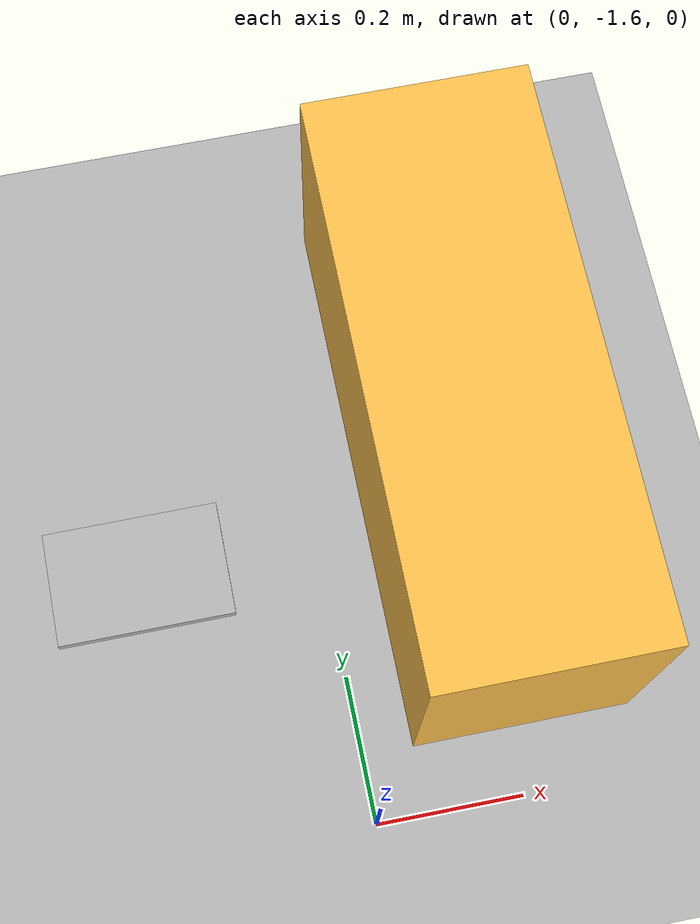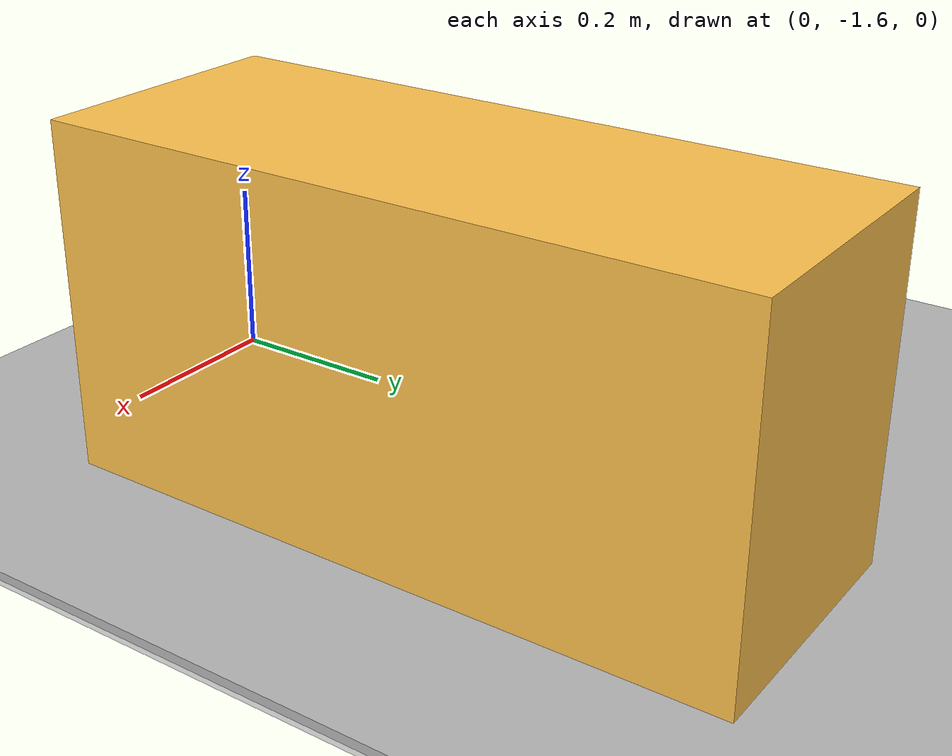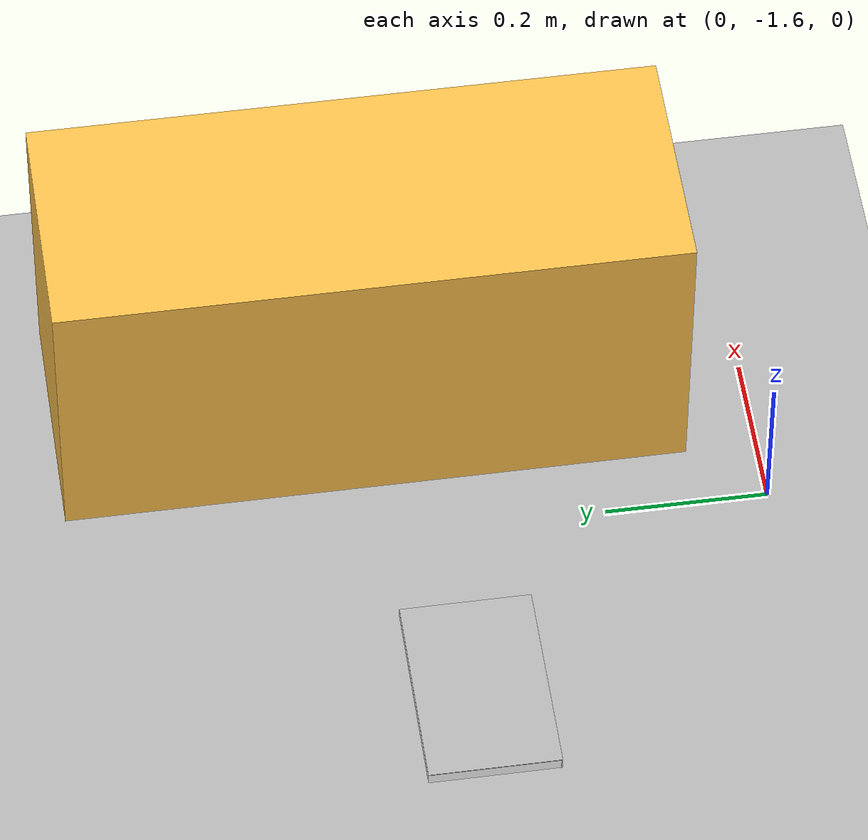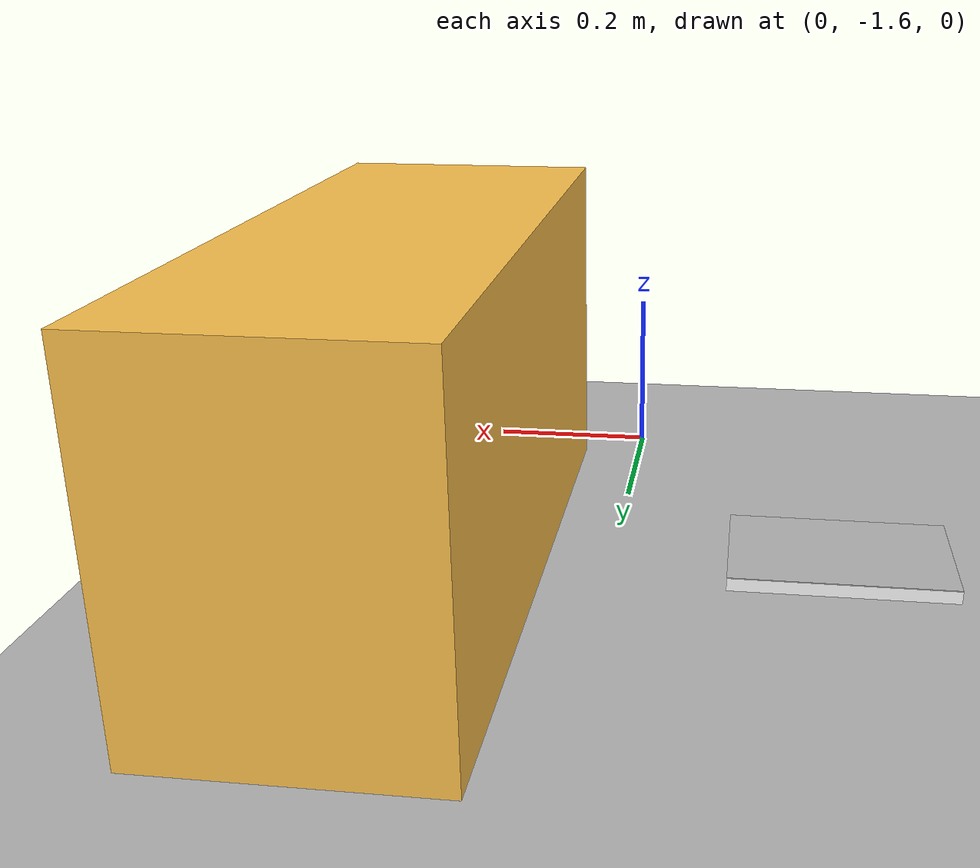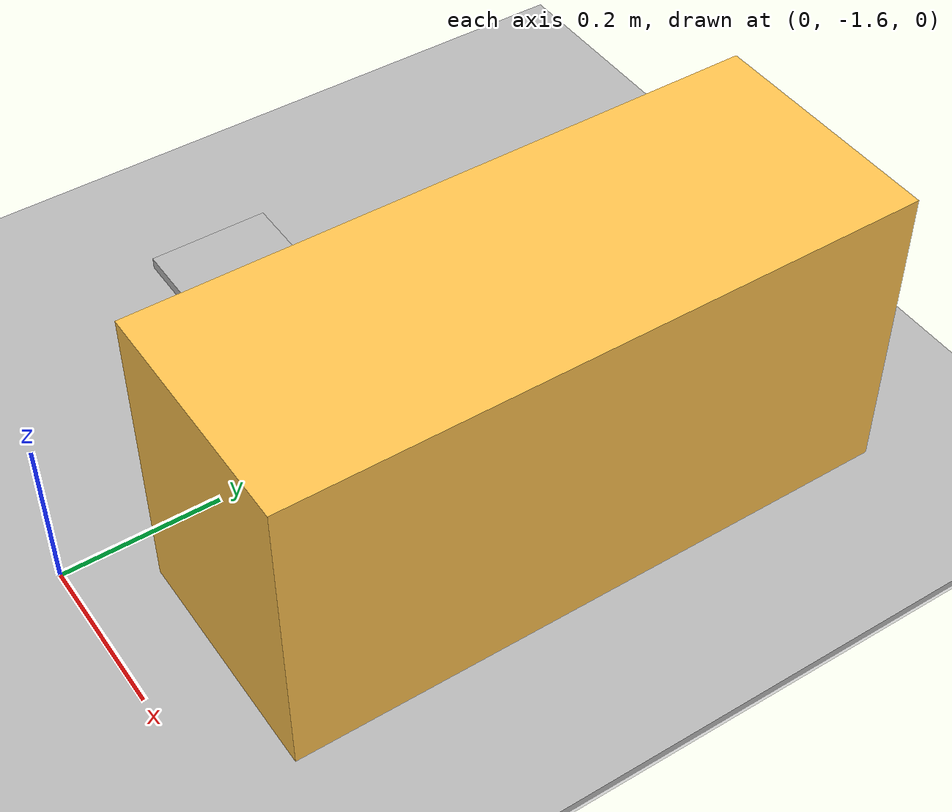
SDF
<sdf version="1.7">
 <world name="default">
  <light name="sun" type="directional">
   <pose>0 0 10 0 -0 0</pose>
   <diffuse>0.8 0.8 0.8 1</diffuse>
   <specular>0.2 0.2 0.2 1</specular>
   <attenuation>
    <range>1000</range>
    <constant>0.9</constant>
    <linear>0.01</linear>
    <quadratic>0.001</quadratic>
   </attenuation>
   <direction>-0.5 0.1 -0.9</direction>
   <spot><inner_angle>0</inner_angle><outer_angle>0</outer_angle><falloff>0</falloff></spot>
  </light>
  <model name="ground_plane">
   <static>1</static>
   <link name="link">
    <collision name="collision">
     <geometry><plane><normal>0 0 1</normal><size>100 100</size></plane></geometry>
     <surface>
      <contact><collide_bitmask>65535</collide_bitmask></contact>
      <friction><ode><mu>100</mu><mu2>50</mu2></ode></friction>
     </surface>
    </collision>
    <visual name="visual">
     <cast_shadows>0</cast_shadows>
     <geometry><plane><normal>0 0 1</normal><size>100 100</size></plane></geometry>
     <material>
      <script><uri>file://media/materials/scripts/gazebo.material</uri><name>Gazebo/Grey</name></script>
     </material>
    </visual>
   </link>
  </model>
  <gravity>0 0 -9.8</gravity>
  <magnetic_field>6e-06 2.3e-05 -4.2e-05</magnetic_field>
  <atmosphere type="adiabatic"/>
  <physics type="ode">
   <max_step_size>0.001</max_step_size>
   <real_time_factor>1</real_time_factor>
   <real_time_update_rate>1000</real_time_update_rate>
  </physics>
  <scene><ambient>0.4 0.4 0.4 1</ambient><background>0.7 0.7 0.7 1</background><shadows>1</shadows></scene>
  <spherical_coordinates>
   <surface_model>EARTH_WGS84</surface_model>
   <latitude_deg>0</latitude_deg>
   <longitude_deg>0</longitude_deg>
   <elevation>0</elevation>
   <heading_deg>0</heading_deg>
  </spherical_coordinates>
  <model name="Box_15x30">
   <link name="Wall">
    <pose>0 0 0.1985 0 -0 0</pose>
    <inertial>
     <mass>5</mass>
     <inertia><ixx>0.3089</ixx><iyy>0.1022</iyy><izz>0.2797</izz><ixy>0</ixy><ixz>0</ixz><iyz>0</iyz></inertia>
    </inertial>
    <collision name="Wall_Collision"><geometry><box><size>0.296 0.764 0.397</size></box></geometry></collision>
    <visual name="Wall_Visual">
     <geometry><box><size>0.296 0.764 0.397</size></box></geometry>
     <material>
      <script><uri>file://media/materials/scripts/gazebo.material</uri><name>Gazebo/Grey</name></script>
      <ambient>1 0.764706 0.305882 1</ambient>
     </material>
    </visual>
   </link>
   <static>1</static>
   <pose>0.216047 -1.12812 0 0 -0 0</pose>
  </model>
  <model name="Floor">
   <link name="main">
    <pose>0 0 0.01 0 -0 0</pose>
    <collision name="main_Collision"><geometry><box><size>40 40 0.01</size></box></geometry></collision>
    <visual name="main_Visual">
     <geometry><box><size>40 40 0.01</size></box></geometry>
     <material>
      <script>
       <uri>model://Floor/materials/scripts</uri>
       <uri>model://Floor/materials/textures</uri>
       <name>floor</name>
      </script>
     </material>
    </visual>
   </link>
   <static>1</static>
   <pose>-0.106285 -0.241735 0 0 -0 0</pose>
  </model>
  <model name="book_1">
   <link name="cover">
    <pose>0 -0.000108 0.015405 0 -0 0</pose>
    <visual name="visual">
     <geometry><box><size>0.245 0.16 0.03</size></box></geometry>
     <material>
      <script>
       <uri>model://book_1/materials/scripts</uri>
       <uri>model://book_1/materials/textures</uri>
       <name>book_1</name>
      </script>
     </material>
    </visual>
    <collision name="collision"><geometry><box><size>0.245 0.16 0.03</size></box></geometry></collision>
   </link>
   <link name="page">
    <pose>0 0.000608 0.015405 0 -0 0</pose>
    <visual name="visual">
     <geometry><box><size>0.24502 0.15862 0.028</size></box></geometry>
     <material>
      <lighting>1</lighting>
      <ambient>1 1 1 1</ambient>
      <diffuse>1 1 1 1</diffuse>
      <specular>0.01 0.01 0.01 1</specular>
      <emissive>0 0 0 1</emissive>
      <shader type="vertex"><normal_map>__default__</normal_map></shader>
     </material>
    </visual>
    <collision name="collision"><geometry><box><size>0.245 0.16 0.03</size></box></geometry></collision>
   </link>
   <static>1</static>
   <pose>-0.254525 -1.20741 0 0 -0 0</pose>
  </model>
 </world>
</sdf>
